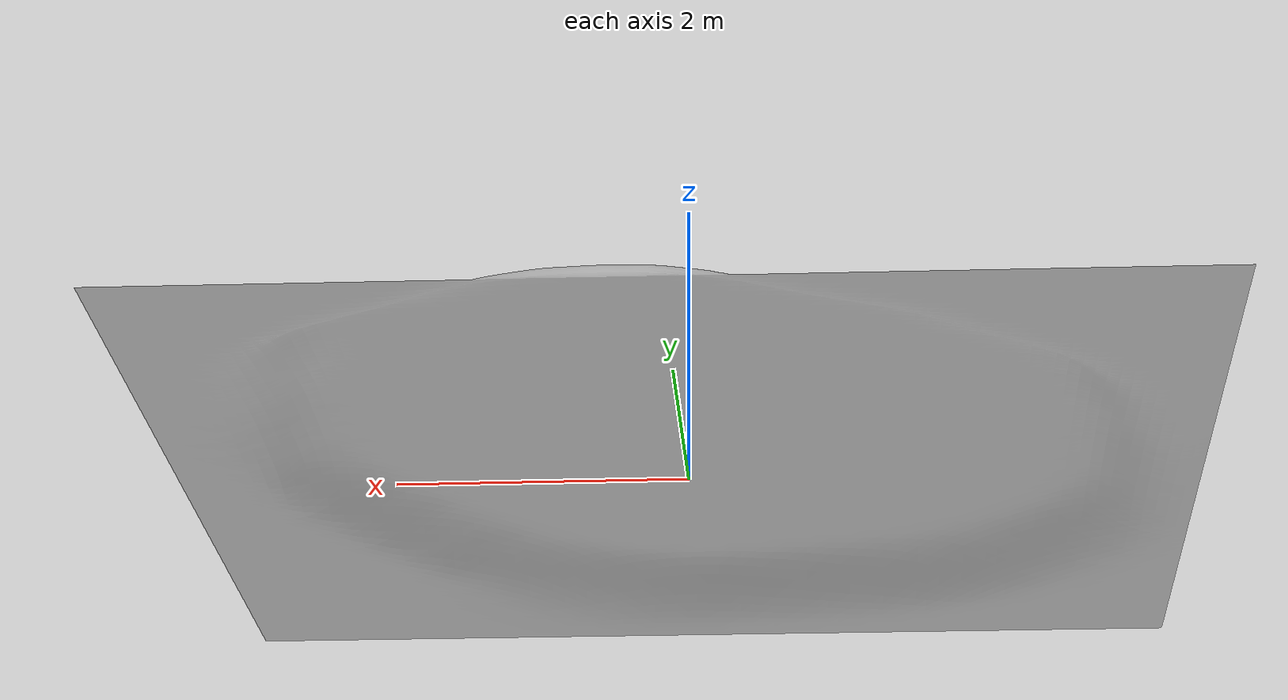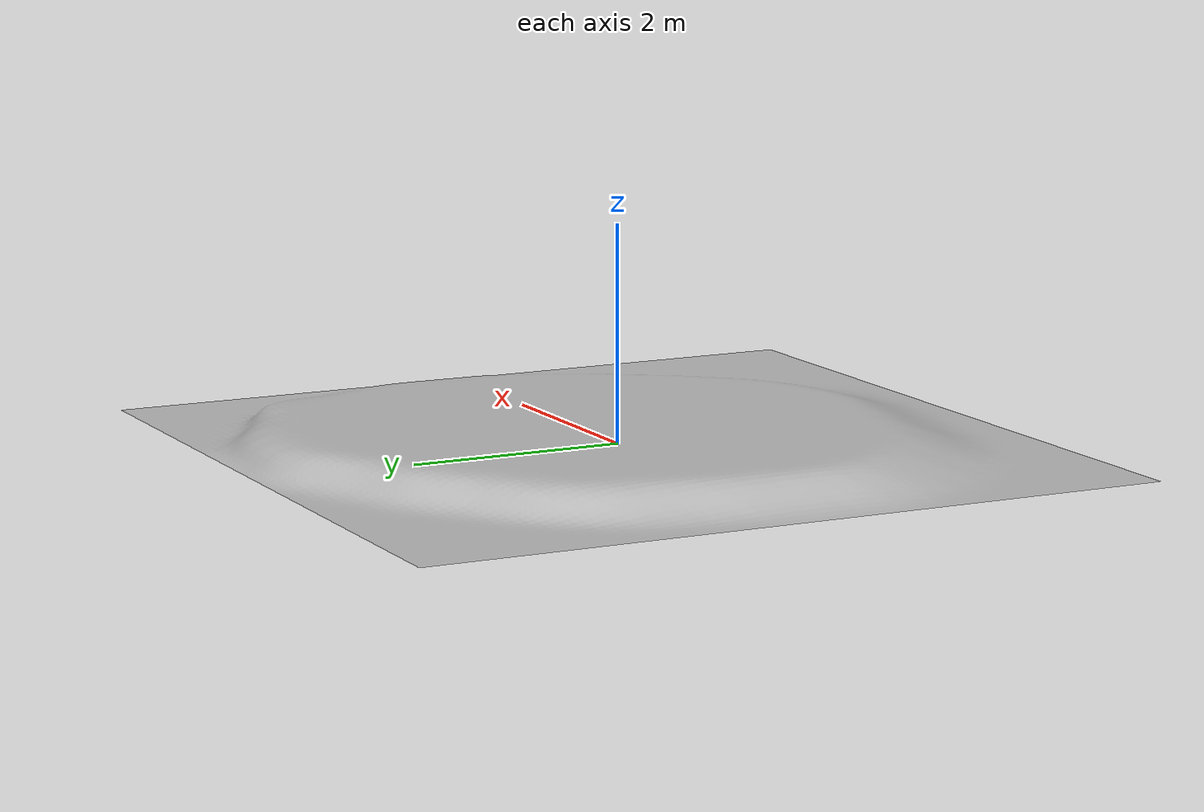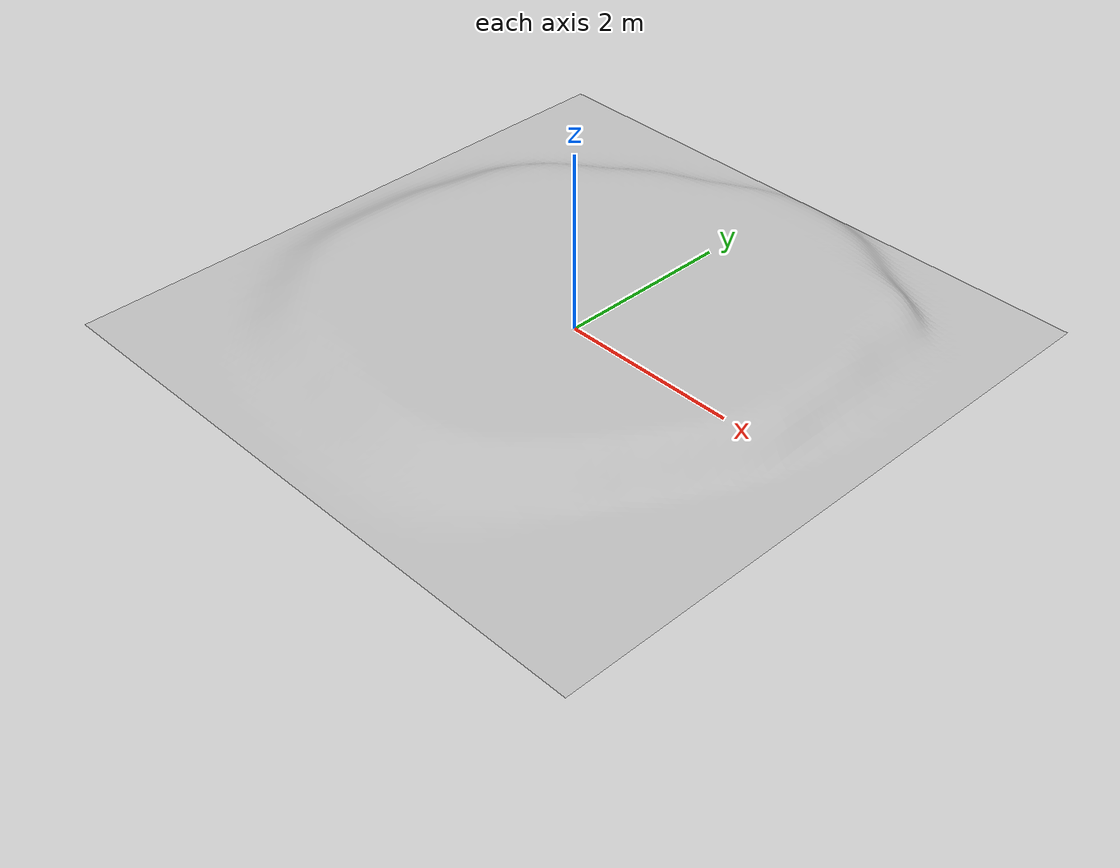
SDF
<?xml version="1.0" ?>
<sdf version="1.5">
  <model name="mud_patch">
    <pose>0 0 0 0 0 0</pose>
    <static>true</static>
    <link name="body">
     <collision name='collision'>
        <geometry>
            <mesh><uri>model://urdf/models/mud_patch/media/mud_patch.dae</uri></mesh>
          </geometry>
          <max_contacts>1</max_contacts>
          <surface>
            <friction>
              <ode>
                <mu>0.25</mu>
                <mu2>0.25</mu2>
              </ode>
              <torsional>
                <ode/>
              </torsional>
            </friction>
            <contact>
              <ode/>
            </contact>
            <bounce/>
          </surface>
        </collision>
      <visual name="visual">
         <cast_shadows>false</cast_shadows>
        <geometry>
          <mesh><uri>model://urdf/models/mud_patch/media/mud_patch.dae</uri></mesh>
        </geometry>
	    <material>
          <script>
            <uri>model://urdf/models/mud_patch/media/scripts</uri>
            <uri>model://urdf/models/mud_patch/media/Textures</uri>
            <name>MUD/StaticMUD</name>
          </script>
        </material>
      </visual>
    </link>
  </model>
</sdf>
